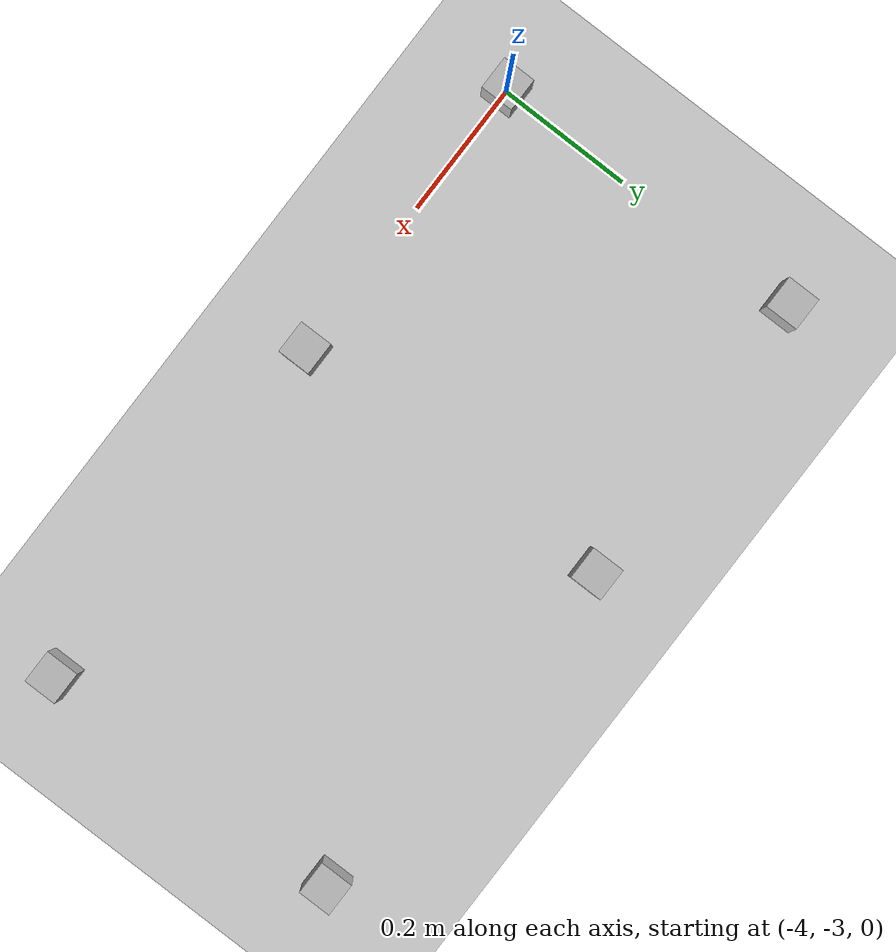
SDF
<sdf version="1.4">
 <world name="default">
  <model name="ground_plane">
   <static>1</static>
   <link name="link">
    <collision name="collision">
     <geometry><plane><normal>0 0 1</normal><size>100 100</size></plane></geometry>
     <surface><friction><ode><mu>100</mu><mu2>50</mu2></ode></friction></surface>
    </collision>
    <visual name="visual">
     <cast_shadows>0</cast_shadows>
     <geometry><plane><normal>0 0 1</normal><size>100 100</size></plane></geometry>
     <material>
      <script><uri>file://media/materials/scripts/gazebo.material</uri><name>Gazebo/Grey</name></script>
     </material>
    </visual>
    <velocity_decay><linear>0</linear><angular>0</angular></velocity_decay>
   </link>
  </model>
  <model name="at0_102">
   <static>1</static>
   <link name="link">
    <pose>0 0 0.025 0 -0 0</pose>
    <inertial>
     <mass>0.1</mass>
     <inertia><ixx>4e-05</ixx><ixy>0</ixy><ixz>0</ixz><iyy>4e-05</iyy><iyz>0</iyz><izz>4e-05</izz></inertia>
    </inertial>
    <visual name="visual">
     <transparency>0.1</transparency>
     <geometry><box><size>0.05 0.05 0.05</size></box></geometry>
     <material>
      <script>
       <uri>model://at0/materials/scripts</uri>
       <uri>model://at0/materials/textures</uri>
       <name>at0/Diffuse</name>
      </script>
     </material>
    </visual>
    <collision name="collision">
     <pose>0 0 -0.0125 0 -0 0</pose>
     <geometry><box><size>0.05 0.05 0.025</size></box></geometry>
     <surface><friction><ode><mu>0.8</mu><mu2>0.7</mu2></ode></friction></surface>
    </collision>
    <velocity_decay><linear>0</linear><angular>0</angular></velocity_decay>
   </link>
   <pose>-3.55433 -2.50653 0 0 -0 0</pose>
  </model>
  <model name="at0_127">
   <static>1</static>
   <link name="link">
    <pose>0 0 0.025 0 -0 0</pose>
    <inertial>
     <mass>0.1</mass>
     <inertia><ixx>4e-05</ixx><ixy>0</ixy><ixz>0</ixz><iyy>4e-05</iyy><iyz>0</iyz><izz>4e-05</izz></inertia>
    </inertial>
    <visual name="visual">
     <transparency>0.1</transparency>
     <geometry><box><size>0.05 0.05 0.05</size></box></geometry>
     <material>
      <script>
       <uri>model://at0/materials/scripts</uri>
       <uri>model://at0/materials/textures</uri>
       <name>at0/Diffuse</name>
      </script>
     </material>
    </visual>
    <collision name="collision">
     <pose>0 0 -0.0125 0 -0 0</pose>
     <geometry><box><size>0.05 0.05 0.025</size></box></geometry>
     <surface><friction><ode><mu>0.8</mu><mu2>0.7</mu2></ode></friction></surface>
    </collision>
    <velocity_decay><linear>0</linear><angular>0</angular></velocity_decay>
   </link>
   <pose>-4 -2.51989 0 0 -0 0</pose>
  </model>
  <model name="at0_128">
   <static>1</static>
   <link name="link">
    <pose>0 0 0.025 0 -0 0</pose>
    <inertial>
     <mass>0.1</mass>
     <inertia><ixx>4e-05</ixx><ixy>0</ixy><ixz>0</ixz><iyy>4e-05</iyy><iyz>0</iyz><izz>4e-05</izz></inertia>
    </inertial>
    <visual name="visual">
     <transparency>0.1</transparency>
     <geometry><box><size>0.05 0.05 0.05</size></box></geometry>
     <material>
      <script>
       <uri>model://at0/materials/scripts</uri>
       <uri>model://at0/materials/textures</uri>
       <name>at0/Diffuse</name>
      </script>
     </material>
    </visual>
    <collision name="collision">
     <pose>0 0 -0.0125 0 -0 0</pose>
     <geometry><box><size>0.05 0.05 0.025</size></box></geometry>
     <surface><friction><ode><mu>0.8</mu><mu2>0.7</mu2></ode></friction></surface>
    </collision>
    <velocity_decay><linear>0</linear><angular>0</angular></velocity_decay>
   </link>
   <pose>-3 -2.53752 0 0 -0 0</pose>
  </model>
  <model name="at0_184">
   <static>1</static>
   <link name="link">
    <pose>0 0 0.025 0 -0 0</pose>
    <inertial>
     <mass>0.1</mass>
     <inertia><ixx>4e-05</ixx><ixy>0</ixy><ixz>0</ixz><iyy>4e-05</iyy><iyz>0</iyz><izz>4e-05</izz></inertia>
    </inertial>
    <visual name="visual">
     <transparency>0.1</transparency>
     <geometry><box><size>0.05 0.05 0.05</size></box></geometry>
     <material>
      <script>
       <uri>model://at0/materials/scripts</uri>
       <uri>model://at0/materials/textures</uri>
       <name>at0/Diffuse</name>
      </script>
     </material>
    </visual>
    <collision name="collision">
     <pose>0 0 -0.0125 0 -0 0</pose>
     <geometry><box><size>0.05 0.05 0.025</size></box></geometry>
     <surface><friction><ode><mu>0.8</mu><mu2>0.7</mu2></ode></friction></surface>
    </collision>
    <velocity_decay><linear>0</linear><angular>0</angular></velocity_decay>
   </link>
   <pose>-4 -3 0 0 -0 0</pose>
  </model>
  <model name="at0_185">
   <static>1</static>
   <link name="link">
    <pose>0 0 0.025 0 -0 0</pose>
    <inertial>
     <mass>0.1</mass>
     <inertia><ixx>4e-05</ixx><ixy>0</ixy><ixz>0</ixz><iyy>4e-05</iyy><iyz>0</iyz><izz>4e-05</izz></inertia>
    </inertial>
    <visual name="visual">
     <transparency>0.1</transparency>
     <geometry><box><size>0.05 0.05 0.05</size></box></geometry>
     <material>
      <script>
       <uri>model://at0/materials/scripts</uri>
       <uri>model://at0/materials/textures</uri>
       <name>at0/Diffuse</name>
      </script>
     </material>
    </visual>
    <collision name="collision">
     <pose>0 0 -0.0125 0 -0 0</pose>
     <geometry><box><size>0.05 0.05 0.025</size></box></geometry>
     <surface><friction><ode><mu>0.8</mu><mu2>0.7</mu2></ode></friction></surface>
    </collision>
    <velocity_decay><linear>0</linear><angular>0</angular></velocity_decay>
   </link>
   <pose>-3.55537 -3 0 0 -0 0</pose>
  </model>
  <model name="at0_186">
   <static>1</static>
   <link name="link">
    <pose>0 0 0.025 0 -0 0</pose>
    <inertial>
     <mass>0.1</mass>
     <inertia><ixx>4e-05</ixx><ixy>0</ixy><ixz>0</ixz><iyy>4e-05</iyy><iyz>0</iyz><izz>4e-05</izz></inertia>
    </inertial>
    <visual name="visual">
     <transparency>0.1</transparency>
     <geometry><box><size>0.05 0.05 0.05</size></box></geometry>
     <material>
      <script>
       <uri>model://at0/materials/scripts</uri>
       <uri>model://at0/materials/textures</uri>
       <name>at0/Diffuse</name>
      </script>
     </material>
    </visual>
    <collision name="collision">
     <pose>0 0 -0.0125 0 -0 0</pose>
     <geometry><box><size>0.05 0.05 0.025</size></box></geometry>
     <surface><friction><ode><mu>0.8</mu><mu2>0.7</mu2></ode></friction></surface>
    </collision>
    <velocity_decay><linear>0</linear><angular>0</angular></velocity_decay>
   </link>
   <pose>-3 -3 0 0 -0 0</pose>
  </model>
 </world>
</sdf>
